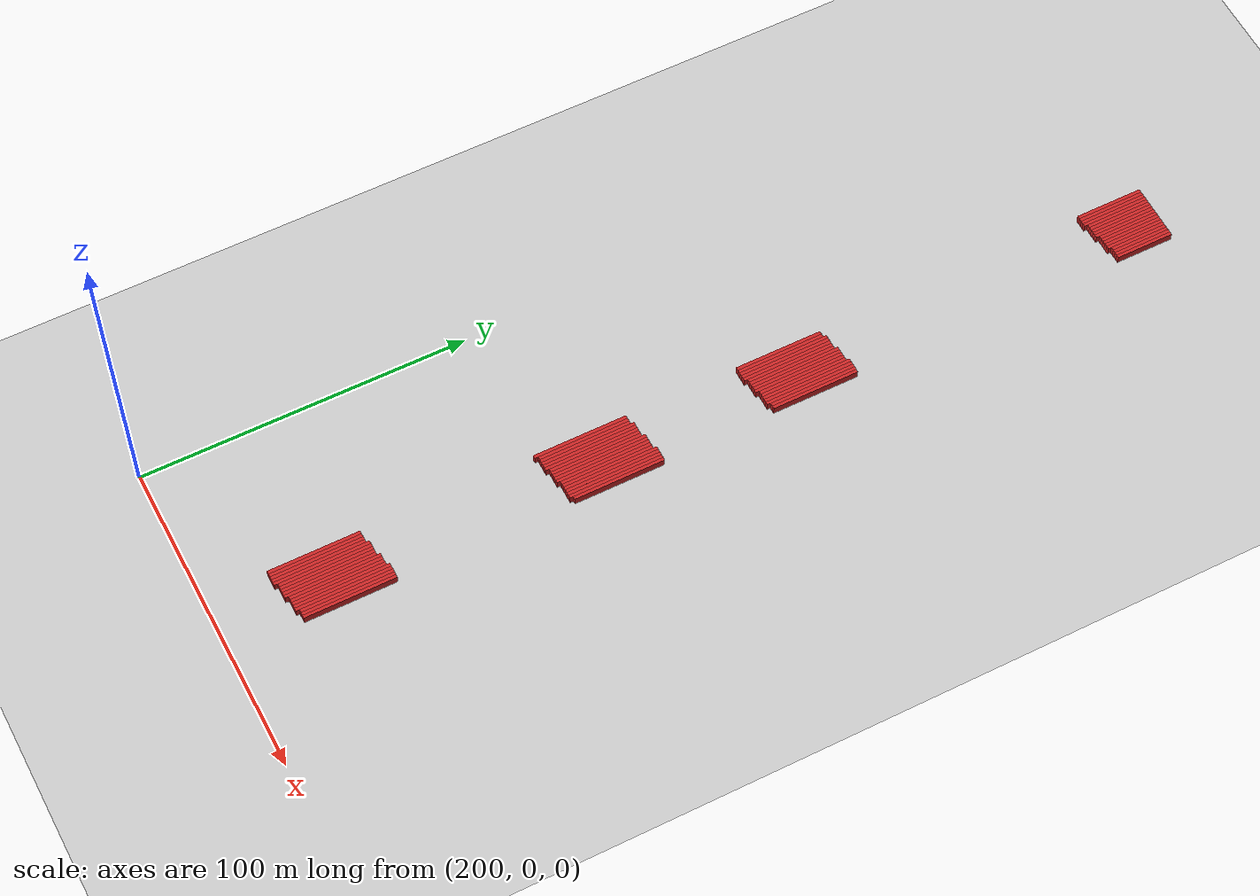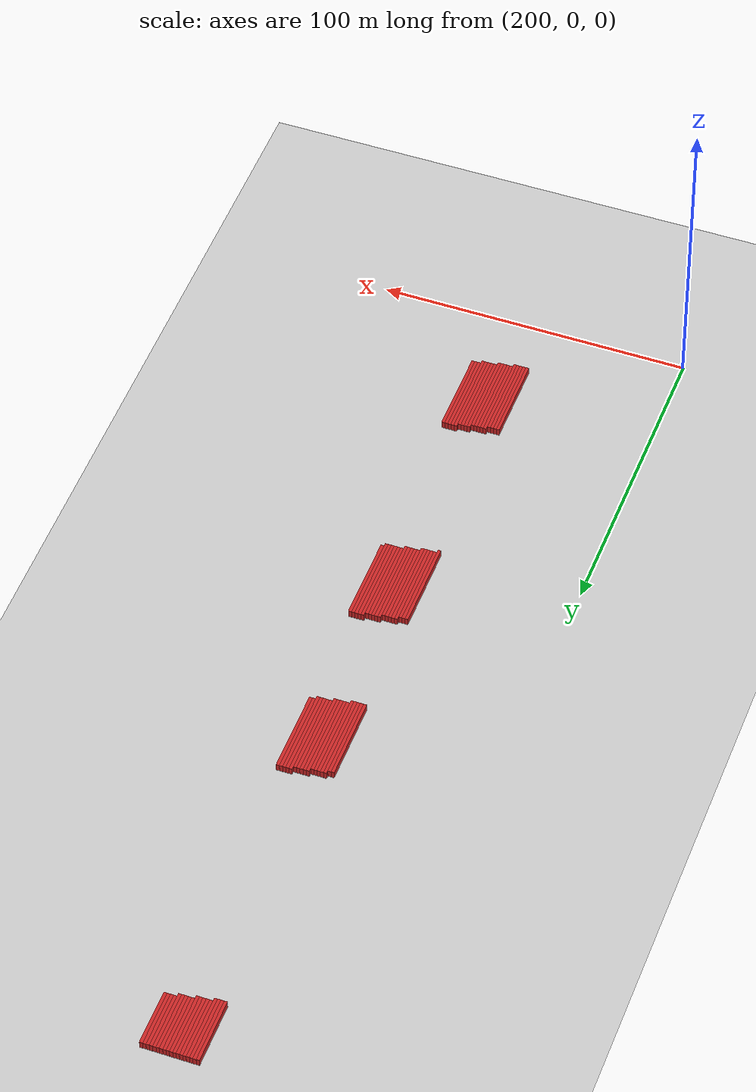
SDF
<sdf version="1.4">
 <world name="1_wall">
  <model name="ground_plane">
   <static>1</static>
   <link name="link">
    <collision name="collision">
     <geometry><plane><normal>0 0 1</normal><size>1000 1000</size></plane></geometry>
     <surface><friction><ode><mu>100</mu><mu2>50</mu2></ode></friction></surface>
    </collision>
    <visual name="visual">
     <cast_shadows>0</cast_shadows>
     <geometry><plane><normal>0 0 1</normal><size>10000 10000</size></plane></geometry>
     <material>
      <script><uri>file://media/materials/scripts/gazebo.material</uri><name>Gazebo/Grey</name></script>
     </material>
    </visual>
    <velocity_decay><linear>0</linear><angular>0</angular></velocity_decay>
   </link>
  </model>
  <model name="Wall_781">
   <static>1</static>
   <link name="Wall_781">
    <collision name="Wall_Collision_781">
     <geometry><box><size>21.0 1.0 2.5</size></box></geometry>
     <pose>0 0 1.25 0 -0 0</pose>
    </collision>
    <visual name="Wall_Visual_781">
     <pose>0 0 1.25 0 -0 0</pose>
     <geometry><box><size>21.0 1.0 2.5</size></box></geometry>
     <material>
      <script><uri>file://media/materials/scripts/gazebo.material</uri><name>Gazebo/Red</name></script>
     </material>
    </visual>
    <velocity_decay><linear>0</linear><angular>0</angular></velocity_decay>
    <pose>244.5 287.5 0 0 0 1.5707963267948966</pose>
   </link>
  </model>
  <model name="Wall_782">
   <static>1</static>
   <link name="Wall_782">
    <collision name="Wall_Collision_782">
     <geometry><box><size>28.0 1.0 2.5</size></box></geometry>
     <pose>0 0 1.25 0 -0 0</pose>
    </collision>
    <visual name="Wall_Visual_782">
     <pose>0 0 1.25 0 -0 0</pose>
     <geometry><box><size>28.0 1.0 2.5</size></box></geometry>
     <material>
      <script><uri>file://media/materials/scripts/gazebo.material</uri><name>Gazebo/Red</name></script>
     </material>
    </visual>
    <velocity_decay><linear>0</linear><angular>0</angular></velocity_decay>
    <pose>245.5 33.0 0 0 0 1.5707963267948966</pose>
   </link>
  </model>
  <model name="Wall_783">
   <static>1</static>
   <link name="Wall_783">
    <collision name="Wall_Collision_783">
     <geometry><box><size>29.0 1.0 2.5</size></box></geometry>
     <pose>0 0 1.25 0 -0 0</pose>
    </collision>
    <visual name="Wall_Visual_783">
     <pose>0 0 1.25 0 -0 0</pose>
     <geometry><box><size>29.0 1.0 2.5</size></box></geometry>
     <material>
      <script><uri>file://media/materials/scripts/gazebo.material</uri><name>Gazebo/Red</name></script>
     </material>
    </visual>
    <velocity_decay><linear>0</linear><angular>0</angular></velocity_decay>
    <pose>245.5 114.5 0 0 0 1.5707963267948966</pose>
   </link>
  </model>
  <model name="Wall_784">
   <static>1</static>
   <link name="Wall_784">
    <collision name="Wall_Collision_784">
     <geometry><box><size>27.0 1.0 2.5</size></box></geometry>
     <pose>0 0 1.25 0 -0 0</pose>
    </collision>
    <visual name="Wall_Visual_784">
     <pose>0 0 1.25 0 -0 0</pose>
     <geometry><box><size>27.0 1.0 2.5</size></box></geometry>
     <material>
      <script><uri>file://media/materials/scripts/gazebo.material</uri><name>Gazebo/Red</name></script>
     </material>
    </visual>
    <velocity_decay><linear>0</linear><angular>0</angular></velocity_decay>
    <pose>245.5 177.5 0 0 0 1.5707963267948966</pose>
   </link>
  </model>
  <model name="Wall_785">
   <static>1</static>
   <link name="Wall_785">
    <collision name="Wall_Collision_785">
     <geometry><box><size>21.0 1.0 2.5</size></box></geometry>
     <pose>0 0 1.25 0 -0 0</pose>
    </collision>
    <visual name="Wall_Visual_785">
     <pose>0 0 1.25 0 -0 0</pose>
     <geometry><box><size>21.0 1.0 2.5</size></box></geometry>
     <material>
      <script><uri>file://media/materials/scripts/gazebo.material</uri><name>Gazebo/Red</name></script>
     </material>
    </visual>
    <velocity_decay><linear>0</linear><angular>0</angular></velocity_decay>
    <pose>245.5 287.5 0 0 0 1.5707963267948966</pose>
   </link>
  </model>
  <model name="Wall_786">
   <static>1</static>
   <link name="Wall_786">
    <collision name="Wall_Collision_786">
     <geometry><box><size>28.0 1.0 2.5</size></box></geometry>
     <pose>0 0 1.25 0 -0 0</pose>
    </collision>
    <visual name="Wall_Visual_786">
     <pose>0 0 1.25 0 -0 0</pose>
     <geometry><box><size>28.0 1.0 2.5</size></box></geometry>
     <material>
      <script><uri>file://media/materials/scripts/gazebo.material</uri><name>Gazebo/Red</name></script>
     </material>
    </visual>
    <velocity_decay><linear>0</linear><angular>0</angular></velocity_decay>
    <pose>246.5 33.0 0 0 0 1.5707963267948966</pose>
   </link>
  </model>
  <model name="Wall_787">
   <static>1</static>
   <link name="Wall_787">
    <collision name="Wall_Collision_787">
     <geometry><box><size>28.0 1.0 2.5</size></box></geometry>
     <pose>0 0 1.25 0 -0 0</pose>
    </collision>
    <visual name="Wall_Visual_787">
     <pose>0 0 1.25 0 -0 0</pose>
     <geometry><box><size>28.0 1.0 2.5</size></box></geometry>
     <material>
      <script><uri>file://media/materials/scripts/gazebo.material</uri><name>Gazebo/Red</name></script>
     </material>
    </visual>
    <velocity_decay><linear>0</linear><angular>0</angular></velocity_decay>
    <pose>246.5 115.0 0 0 0 1.5707963267948966</pose>
   </link>
  </model>
  <model name="Wall_788">
   <static>1</static>
   <link name="Wall_788">
    <collision name="Wall_Collision_788">
     <geometry><box><size>27.0 1.0 2.5</size></box></geometry>
     <pose>0 0 1.25 0 -0 0</pose>
    </collision>
    <visual name="Wall_Visual_788">
     <pose>0 0 1.25 0 -0 0</pose>
     <geometry><box><size>27.0 1.0 2.5</size></box></geometry>
     <material>
      <script><uri>file://media/materials/scripts/gazebo.material</uri><name>Gazebo/Red</name></script>
     </material>
    </visual>
    <velocity_decay><linear>0</linear><angular>0</angular></velocity_decay>
    <pose>246.5 177.5 0 0 0 1.5707963267948966</pose>
   </link>
  </model>
  <model name="Wall_789">
   <static>1</static>
   <link name="Wall_789">
    <collision name="Wall_Collision_789">
     <geometry><box><size>21.0 1.0 2.5</size></box></geometry>
     <pose>0 0 1.25 0 -0 0</pose>
    </collision>
    <visual name="Wall_Visual_789">
     <pose>0 0 1.25 0 -0 0</pose>
     <geometry><box><size>21.0 1.0 2.5</size></box></geometry>
     <material>
      <script><uri>file://media/materials/scripts/gazebo.material</uri><name>Gazebo/Red</name></script>
     </material>
    </visual>
    <velocity_decay><linear>0</linear><angular>0</angular></velocity_decay>
    <pose>246.5 287.5 0 0 0 1.5707963267948966</pose>
   </link>
  </model>
  <model name="Wall_790">
   <static>1</static>
   <link name="Wall_790">
    <collision name="Wall_Collision_790">
     <geometry><box><size>28.0 1.0 2.5</size></box></geometry>
     <pose>0 0 1.25 0 -0 0</pose>
    </collision>
    <visual name="Wall_Visual_790">
     <pose>0 0 1.25 0 -0 0</pose>
     <geometry><box><size>28.0 1.0 2.5</size></box></geometry>
     <material>
      <script><uri>file://media/materials/scripts/gazebo.material</uri><name>Gazebo/Red</name></script>
     </material>
    </visual>
    <velocity_decay><linear>0</linear><angular>0</angular></velocity_decay>
    <pose>247.5 33.0 0 0 0 1.5707963267948966</pose>
   </link>
  </model>
  <model name="Wall_791">
   <static>1</static>
   <link name="Wall_791">
    <collision name="Wall_Collision_791">
     <geometry><box><size>28.0 1.0 2.5</size></box></geometry>
     <pose>0 0 1.25 0 -0 0</pose>
    </collision>
    <visual name="Wall_Visual_791">
     <pose>0 0 1.25 0 -0 0</pose>
     <geometry><box><size>28.0 1.0 2.5</size></box></geometry>
     <material>
      <script><uri>file://media/materials/scripts/gazebo.material</uri><name>Gazebo/Red</name></script>
     </material>
    </visual>
    <velocity_decay><linear>0</linear><angular>0</angular></velocity_decay>
    <pose>247.5 115.0 0 0 0 1.5707963267948966</pose>
   </link>
  </model>
  <model name="Wall_792">
   <static>1</static>
   <link name="Wall_792">
    <collision name="Wall_Collision_792">
     <geometry><box><size>28.0 1.0 2.5</size></box></geometry>
     <pose>0 0 1.25 0 -0 0</pose>
    </collision>
    <visual name="Wall_Visual_792">
     <pose>0 0 1.25 0 -0 0</pose>
     <geometry><box><size>28.0 1.0 2.5</size></box></geometry>
     <material>
      <script><uri>file://media/materials/scripts/gazebo.material</uri><name>Gazebo/Red</name></script>
     </material>
    </visual>
    <velocity_decay><linear>0</linear><angular>0</angular></velocity_decay>
    <pose>247.5 178.0 0 0 0 1.5707963267948966</pose>
   </link>
  </model>
  <model name="Wall_793">
   <static>1</static>
   <link name="Wall_793">
    <collision name="Wall_Collision_793">
     <geometry><box><size>21.0 1.0 2.5</size></box></geometry>
     <pose>0 0 1.25 0 -0 0</pose>
    </collision>
    <visual name="Wall_Visual_793">
     <pose>0 0 1.25 0 -0 0</pose>
     <geometry><box><size>21.0 1.0 2.5</size></box></geometry>
     <material>
      <script><uri>file://media/materials/scripts/gazebo.material</uri><name>Gazebo/Red</name></script>
     </material>
    </visual>
    <velocity_decay><linear>0</linear><angular>0</angular></velocity_decay>
    <pose>247.5 287.5 0 0 0 1.5707963267948966</pose>
   </link>
  </model>
  <model name="Wall_794">
   <static>1</static>
   <link name="Wall_794">
    <collision name="Wall_Collision_794">
     <geometry><box><size>28.0 1.0 2.5</size></box></geometry>
     <pose>0 0 1.25 0 -0 0</pose>
    </collision>
    <visual name="Wall_Visual_794">
     <pose>0 0 1.25 0 -0 0</pose>
     <geometry><box><size>28.0 1.0 2.5</size></box></geometry>
     <material>
      <script><uri>file://media/materials/scripts/gazebo.material</uri><name>Gazebo/Red</name></script>
     </material>
    </visual>
    <velocity_decay><linear>0</linear><angular>0</angular></velocity_decay>
    <pose>248.5 33.0 0 0 0 1.5707963267948966</pose>
   </link>
  </model>
  <model name="Wall_795">
   <static>1</static>
   <link name="Wall_795">
    <collision name="Wall_Collision_795">
     <geometry><box><size>29.0 1.0 2.5</size></box></geometry>
     <pose>0 0 1.25 0 -0 0</pose>
    </collision>
    <visual name="Wall_Visual_795">
     <pose>0 0 1.25 0 -0 0</pose>
     <geometry><box><size>29.0 1.0 2.5</size></box></geometry>
     <material>
      <script><uri>file://media/materials/scripts/gazebo.material</uri><name>Gazebo/Red</name></script>
     </material>
    </visual>
    <velocity_decay><linear>0</linear><angular>0</angular></velocity_decay>
    <pose>248.5 115.5 0 0 0 1.5707963267948966</pose>
   </link>
  </model>
  <model name="Wall_796">
   <static>1</static>
   <link name="Wall_796">
    <collision name="Wall_Collision_796">
     <geometry><box><size>28.0 1.0 2.5</size></box></geometry>
     <pose>0 0 1.25 0 -0 0</pose>
    </collision>
    <visual name="Wall_Visual_796">
     <pose>0 0 1.25 0 -0 0</pose>
     <geometry><box><size>28.0 1.0 2.5</size></box></geometry>
     <material>
      <script><uri>file://media/materials/scripts/gazebo.material</uri><name>Gazebo/Red</name></script>
     </material>
    </visual>
    <velocity_decay><linear>0</linear><angular>0</angular></velocity_decay>
    <pose>248.5 178.0 0 0 0 1.5707963267948966</pose>
   </link>
  </model>
  <model name="Wall_797">
   <static>1</static>
   <link name="Wall_797">
    <collision name="Wall_Collision_797">
     <geometry><box><size>20.0 1.0 2.5</size></box></geometry>
     <pose>0 0 1.25 0 -0 0</pose>
    </collision>
    <visual name="Wall_Visual_797">
     <pose>0 0 1.25 0 -0 0</pose>
     <geometry><box><size>20.0 1.0 2.5</size></box></geometry>
     <material>
      <script><uri>file://media/materials/scripts/gazebo.material</uri><name>Gazebo/Red</name></script>
     </material>
    </visual>
    <velocity_decay><linear>0</linear><angular>0</angular></velocity_decay>
    <pose>248.5 288.0 0 0 0 1.5707963267948966</pose>
   </link>
  </model>
  <model name="Wall_798">
   <static>1</static>
   <link name="Wall_798">
    <collision name="Wall_Collision_798">
     <geometry><box><size>29.0 1.0 2.5</size></box></geometry>
     <pose>0 0 1.25 0 -0 0</pose>
    </collision>
    <visual name="Wall_Visual_798">
     <pose>0 0 1.25 0 -0 0</pose>
     <geometry><box><size>29.0 1.0 2.5</size></box></geometry>
     <material>
      <script><uri>file://media/materials/scripts/gazebo.material</uri><name>Gazebo/Red</name></script>
     </material>
    </visual>
    <velocity_decay><linear>0</linear><angular>0</angular></velocity_decay>
    <pose>249.5 33.5 0 0 0 1.5707963267948966</pose>
   </link>
  </model>
  <model name="Wall_799">
   <static>1</static>
   <link name="Wall_799">
    <collision name="Wall_Collision_799">
     <geometry><box><size>29.0 1.0 2.5</size></box></geometry>
     <pose>0 0 1.25 0 -0 0</pose>
    </collision>
    <visual name="Wall_Visual_799">
     <pose>0 0 1.25 0 -0 0</pose>
     <geometry><box><size>29.0 1.0 2.5</size></box></geometry>
     <material>
      <script><uri>file://media/materials/scripts/gazebo.material</uri><name>Gazebo/Red</name></script>
     </material>
    </visual>
    <velocity_decay><linear>0</linear><angular>0</angular></velocity_decay>
    <pose>249.5 115.5 0 0 0 1.5707963267948966</pose>
   </link>
  </model>
  <model name="Wall_800">
   <static>1</static>
   <link name="Wall_800">
    <collision name="Wall_Collision_800">
     <geometry><box><size>28.0 1.0 2.5</size></box></geometry>
     <pose>0 0 1.25 0 -0 0</pose>
    </collision>
    <visual name="Wall_Visual_800">
     <pose>0 0 1.25 0 -0 0</pose>
     <geometry><box><size>28.0 1.0 2.5</size></box></geometry>
     <material>
      <script><uri>file://media/materials/scripts/gazebo.material</uri><name>Gazebo/Red</name></script>
     </material>
    </visual>
    <velocity_decay><linear>0</linear><angular>0</angular></velocity_decay>
    <pose>249.5 178.0 0 0 0 1.5707963267948966</pose>
   </link>
  </model>
  <model name="Wall_801">
   <static>1</static>
   <link name="Wall_801">
    <collision name="Wall_Collision_801">
     <geometry><box><size>20.0 1.0 2.5</size></box></geometry>
     <pose>0 0 1.25 0 -0 0</pose>
    </collision>
    <visual name="Wall_Visual_801">
     <pose>0 0 1.25 0 -0 0</pose>
     <geometry><box><size>20.0 1.0 2.5</size></box></geometry>
     <material>
      <script><uri>file://media/materials/scripts/gazebo.material</uri><name>Gazebo/Red</name></script>
     </material>
    </visual>
    <velocity_decay><linear>0</linear><angular>0</angular></velocity_decay>
    <pose>249.5 288.0 0 0 0 1.5707963267948966</pose>
   </link>
  </model>
  <model name="Wall_802">
   <static>1</static>
   <link name="Wall_802">
    <collision name="Wall_Collision_802">
     <geometry><box><size>28.0 1.0 2.5</size></box></geometry>
     <pose>0 0 1.25 0 -0 0</pose>
    </collision>
    <visual name="Wall_Visual_802">
     <pose>0 0 1.25 0 -0 0</pose>
     <geometry><box><size>28.0 1.0 2.5</size></box></geometry>
     <material>
      <script><uri>file://media/materials/scripts/gazebo.material</uri><name>Gazebo/Red</name></script>
     </material>
    </visual>
    <velocity_decay><linear>0</linear><angular>0</angular></velocity_decay>
    <pose>250.5 34.0 0 0 0 1.5707963267948966</pose>
   </link>
  </model>
  <model name="Wall_803">
   <static>1</static>
   <link name="Wall_803">
    <collision name="Wall_Collision_803">
     <geometry><box><size>29.0 1.0 2.5</size></box></geometry>
     <pose>0 0 1.25 0 -0 0</pose>
    </collision>
    <visual name="Wall_Visual_803">
     <pose>0 0 1.25 0 -0 0</pose>
     <geometry><box><size>29.0 1.0 2.5</size></box></geometry>
     <material>
      <script><uri>file://media/materials/scripts/gazebo.material</uri><name>Gazebo/Red</name></script>
     </material>
    </visual>
    <velocity_decay><linear>0</linear><angular>0</angular></velocity_decay>
    <pose>250.5 115.5 0 0 0 1.5707963267948966</pose>
   </link>
  </model>
  <model name="Wall_804">
   <static>1</static>
   <link name="Wall_804">
    <collision name="Wall_Collision_804">
     <geometry><box><size>27.0 1.0 2.5</size></box></geometry>
     <pose>0 0 1.25 0 -0 0</pose>
    </collision>
    <visual name="Wall_Visual_804">
     <pose>0 0 1.25 0 -0 0</pose>
     <geometry><box><size>27.0 1.0 2.5</size></box></geometry>
     <material>
      <script><uri>file://media/materials/scripts/gazebo.material</uri><name>Gazebo/Red</name></script>
     </material>
    </visual>
    <velocity_decay><linear>0</linear><angular>0</angular></velocity_decay>
    <pose>250.5 178.5 0 0 0 1.5707963267948966</pose>
   </link>
  </model>
  <model name="Wall_805">
   <static>1</static>
   <link name="Wall_805">
    <collision name="Wall_Collision_805">
     <geometry><box><size>20.0 1.0 2.5</size></box></geometry>
     <pose>0 0 1.25 0 -0 0</pose>
    </collision>
    <visual name="Wall_Visual_805">
     <pose>0 0 1.25 0 -0 0</pose>
     <geometry><box><size>20.0 1.0 2.5</size></box></geometry>
     <material>
      <script><uri>file://media/materials/scripts/gazebo.material</uri><name>Gazebo/Red</name></script>
     </material>
    </visual>
    <velocity_decay><linear>0</linear><angular>0</angular></velocity_decay>
    <pose>250.5 288.0 0 0 0 1.5707963267948966</pose>
   </link>
  </model>
  <model name="Wall_806">
   <static>1</static>
   <link name="Wall_806">
    <collision name="Wall_Collision_806">
     <geometry><box><size>28.0 1.0 2.5</size></box></geometry>
     <pose>0 0 1.25 0 -0 0</pose>
    </collision>
    <visual name="Wall_Visual_806">
     <pose>0 0 1.25 0 -0 0</pose>
     <geometry><box><size>28.0 1.0 2.5</size></box></geometry>
     <material>
      <script><uri>file://media/materials/scripts/gazebo.material</uri><name>Gazebo/Red</name></script>
     </material>
    </visual>
    <velocity_decay><linear>0</linear><angular>0</angular></velocity_decay>
    <pose>251.5 34.0 0 0 0 1.5707963267948966</pose>
   </link>
  </model>
  <model name="Wall_807">
   <static>1</static>
   <link name="Wall_807">
    <collision name="Wall_Collision_807">
     <geometry><box><size>28.0 1.0 2.5</size></box></geometry>
     <pose>0 0 1.25 0 -0 0</pose>
    </collision>
    <visual name="Wall_Visual_807">
     <pose>0 0 1.25 0 -0 0</pose>
     <geometry><box><size>28.0 1.0 2.5</size></box></geometry>
     <material>
      <script><uri>file://media/materials/scripts/gazebo.material</uri><name>Gazebo/Red</name></script>
     </material>
    </visual>
    <velocity_decay><linear>0</linear><angular>0</angular></velocity_decay>
    <pose>251.5 116.0 0 0 0 1.5707963267948966</pose>
   </link>
  </model>
  <model name="Wall_808">
   <static>1</static>
   <link name="Wall_808">
    <collision name="Wall_Collision_808">
     <geometry><box><size>27.0 1.0 2.5</size></box></geometry>
     <pose>0 0 1.25 0 -0 0</pose>
    </collision>
    <visual name="Wall_Visual_808">
     <pose>0 0 1.25 0 -0 0</pose>
     <geometry><box><size>27.0 1.0 2.5</size></box></geometry>
     <material>
      <script><uri>file://media/materials/scripts/gazebo.material</uri><name>Gazebo/Red</name></script>
     </material>
    </visual>
    <velocity_decay><linear>0</linear><angular>0</angular></velocity_decay>
    <pose>251.5 178.5 0 0 0 1.5707963267948966</pose>
   </link>
  </model>
  <model name="Wall_809">
   <static>1</static>
   <link name="Wall_809">
    <collision name="Wall_Collision_809">
     <geometry><box><size>20.0 1.0 2.5</size></box></geometry>
     <pose>0 0 1.25 0 -0 0</pose>
    </collision>
    <visual name="Wall_Visual_809">
     <pose>0 0 1.25 0 -0 0</pose>
     <geometry><box><size>20.0 1.0 2.5</size></box></geometry>
     <material>
      <script><uri>file://media/materials/scripts/gazebo.material</uri><name>Gazebo/Red</name></script>
     </material>
    </visual>
    <velocity_decay><linear>0</linear><angular>0</angular></velocity_decay>
    <pose>251.5 288.0 0 0 0 1.5707963267948966</pose>
   </link>
  </model>
  <model name="Wall_810">
   <static>1</static>
   <link name="Wall_810">
    <collision name="Wall_Collision_810">
     <geometry><box><size>28.0 1.0 2.5</size></box></geometry>
     <pose>0 0 1.25 0 -0 0</pose>
    </collision>
    <visual name="Wall_Visual_810">
     <pose>0 0 1.25 0 -0 0</pose>
     <geometry><box><size>28.0 1.0 2.5</size></box></geometry>
     <material>
      <script><uri>file://media/materials/scripts/gazebo.material</uri><name>Gazebo/Red</name></script>
     </material>
    </visual>
    <velocity_decay><linear>0</linear><angular>0</angular></velocity_decay>
    <pose>252.5 34.0 0 0 0 1.5707963267948966</pose>
   </link>
  </model>
  <model name="Wall_811">
   <static>1</static>
   <link name="Wall_811">
    <collision name="Wall_Collision_811">
     <geometry><box><size>28.0 1.0 2.5</size></box></geometry>
     <pose>0 0 1.25 0 -0 0</pose>
    </collision>
    <visual name="Wall_Visual_811">
     <pose>0 0 1.25 0 -0 0</pose>
     <geometry><box><size>28.0 1.0 2.5</size></box></geometry>
     <material>
      <script><uri>file://media/materials/scripts/gazebo.material</uri><name>Gazebo/Red</name></script>
     </material>
    </visual>
    <velocity_decay><linear>0</linear><angular>0</angular></velocity_decay>
    <pose>252.5 116.0 0 0 0 1.5707963267948966</pose>
   </link>
  </model>
  <model name="Wall_812">
   <static>1</static>
   <link name="Wall_812">
    <collision name="Wall_Collision_812">
     <geometry><box><size>28.0 1.0 2.5</size></box></geometry>
     <pose>0 0 1.25 0 -0 0</pose>
    </collision>
    <visual name="Wall_Visual_812">
     <pose>0 0 1.25 0 -0 0</pose>
     <geometry><box><size>28.0 1.0 2.5</size></box></geometry>
     <material>
      <script><uri>file://media/materials/scripts/gazebo.material</uri><name>Gazebo/Red</name></script>
     </material>
    </visual>
    <velocity_decay><linear>0</linear><angular>0</angular></velocity_decay>
    <pose>252.5 179.0 0 0 0 1.5707963267948966</pose>
   </link>
  </model>
  <model name="Wall_813">
   <static>1</static>
   <link name="Wall_813">
    <collision name="Wall_Collision_813">
     <geometry><box><size>20.0 1.0 2.5</size></box></geometry>
     <pose>0 0 1.25 0 -0 0</pose>
    </collision>
    <visual name="Wall_Visual_813">
     <pose>0 0 1.25 0 -0 0</pose>
     <geometry><box><size>20.0 1.0 2.5</size></box></geometry>
     <material>
      <script><uri>file://media/materials/scripts/gazebo.material</uri><name>Gazebo/Red</name></script>
     </material>
    </visual>
    <velocity_decay><linear>0</linear><angular>0</angular></velocity_decay>
    <pose>252.5 288.0 0 0 0 1.5707963267948966</pose>
   </link>
  </model>
  <model name="Wall_814">
   <static>1</static>
   <link name="Wall_814">
    <collision name="Wall_Collision_814">
     <geometry><box><size>28.0 1.0 2.5</size></box></geometry>
     <pose>0 0 1.25 0 -0 0</pose>
    </collision>
    <visual name="Wall_Visual_814">
     <pose>0 0 1.25 0 -0 0</pose>
     <geometry><box><size>28.0 1.0 2.5</size></box></geometry>
     <material>
      <script><uri>file://media/materials/scripts/gazebo.material</uri><name>Gazebo/Red</name></script>
     </material>
    </visual>
    <velocity_decay><linear>0</linear><angular>0</angular></velocity_decay>
    <pose>253.5 34.0 0 0 0 1.5707963267948966</pose>
   </link>
  </model>
  <model name="Wall_815">
   <static>1</static>
   <link name="Wall_815">
    <collision name="Wall_Collision_815">
     <geometry><box><size>29.0 1.0 2.5</size></box></geometry>
     <pose>0 0 1.25 0 -0 0</pose>
    </collision>
    <visual name="Wall_Visual_815">
     <pose>0 0 1.25 0 -0 0</pose>
     <geometry><box><size>29.0 1.0 2.5</size></box></geometry>
     <material>
      <script><uri>file://media/materials/scripts/gazebo.material</uri><name>Gazebo/Red</name></script>
     </material>
    </visual>
    <velocity_decay><linear>0</linear><angular>0</angular></velocity_decay>
    <pose>253.5 116.5 0 0 0 1.5707963267948966</pose>
   </link>
  </model>
  <model name="Wall_816">
   <static>1</static>
   <link name="Wall_816">
    <collision name="Wall_Collision_816">
     <geometry><box><size>28.0 1.0 2.5</size></box></geometry>
     <pose>0 0 1.25 0 -0 0</pose>
    </collision>
    <visual name="Wall_Visual_816">
     <pose>0 0 1.25 0 -0 0</pose>
     <geometry><box><size>28.0 1.0 2.5</size></box></geometry>
     <material>
      <script><uri>file://media/materials/scripts/gazebo.material</uri><name>Gazebo/Red</name></script>
     </material>
    </visual>
    <velocity_decay><linear>0</linear><angular>0</angular></velocity_decay>
    <pose>253.5 179.0 0 0 0 1.5707963267948966</pose>
   </link>
  </model>
  <model name="Wall_817">
   <static>1</static>
   <link name="Wall_817">
    <collision name="Wall_Collision_817">
     <geometry><box><size>19.0 1.0 2.5</size></box></geometry>
     <pose>0 0 1.25 0 -0 0</pose>
    </collision>
    <visual name="Wall_Visual_817">
     <pose>0 0 1.25 0 -0 0</pose>
     <geometry><box><size>19.0 1.0 2.5</size></box></geometry>
     <material>
      <script><uri>file://media/materials/scripts/gazebo.material</uri><name>Gazebo/Red</name></script>
     </material>
    </visual>
    <velocity_decay><linear>0</linear><angular>0</angular></velocity_decay>
    <pose>253.5 288.5 0 0 0 1.5707963267948966</pose>
   </link>
  </model>
  <model name="Wall_818">
   <static>1</static>
   <link name="Wall_818">
    <collision name="Wall_Collision_818">
     <geometry><box><size>29.0 1.0 2.5</size></box></geometry>
     <pose>0 0 1.25 0 -0 0</pose>
    </collision>
    <visual name="Wall_Visual_818">
     <pose>0 0 1.25 0 -0 0</pose>
     <geometry><box><size>29.0 1.0 2.5</size></box></geometry>
     <material>
      <script><uri>file://media/materials/scripts/gazebo.material</uri><name>Gazebo/Red</name></script>
     </material>
    </visual>
    <velocity_decay><linear>0</linear><angular>0</angular></velocity_decay>
    <pose>254.5 34.5 0 0 0 1.5707963267948966</pose>
   </link>
  </model>
  <model name="Wall_819">
   <static>1</static>
   <link name="Wall_819">
    <collision name="Wall_Collision_819">
     <geometry><box><size>29.0 1.0 2.5</size></box></geometry>
     <pose>0 0 1.25 0 -0 0</pose>
    </collision>
    <visual name="Wall_Visual_819">
     <pose>0 0 1.25 0 -0 0</pose>
     <geometry><box><size>29.0 1.0 2.5</size></box></geometry>
     <material>
      <script><uri>file://media/materials/scripts/gazebo.material</uri><name>Gazebo/Red</name></script>
     </material>
    </visual>
    <velocity_decay><linear>0</linear><angular>0</angular></velocity_decay>
    <pose>254.5 116.5 0 0 0 1.5707963267948966</pose>
   </link>
  </model>
  <model name="Wall_820">
   <static>1</static>
   <link name="Wall_820">
    <collision name="Wall_Collision_820">
     <geometry><box><size>28.0 1.0 2.5</size></box></geometry>
     <pose>0 0 1.25 0 -0 0</pose>
    </collision>
    <visual name="Wall_Visual_820">
     <pose>0 0 1.25 0 -0 0</pose>
     <geometry><box><size>28.0 1.0 2.5</size></box></geometry>
     <material>
      <script><uri>file://media/materials/scripts/gazebo.material</uri><name>Gazebo/Red</name></script>
     </material>
    </visual>
    <velocity_decay><linear>0</linear><angular>0</angular></velocity_decay>
    <pose>254.5 179.0 0 0 0 1.5707963267948966</pose>
   </link>
  </model>
  <model name="Wall_821">
   <static>1</static>
   <link name="Wall_821">
    <collision name="Wall_Collision_821">
     <geometry><box><size>19.0 1.0 2.5</size></box></geometry>
     <pose>0 0 1.25 0 -0 0</pose>
    </collision>
    <visual name="Wall_Visual_821">
     <pose>0 0 1.25 0 -0 0</pose>
     <geometry><box><size>19.0 1.0 2.5</size></box></geometry>
     <material>
      <script><uri>file://media/materials/scripts/gazebo.material</uri><name>Gazebo/Red</name></script>
     </material>
    </visual>
    <velocity_decay><linear>0</linear><angular>0</angular></velocity_decay>
    <pose>254.5 288.5 0 0 0 1.5707963267948966</pose>
   </link>
  </model>
  <model name="Wall_822">
   <static>1</static>
   <link name="Wall_822">
    <collision name="Wall_Collision_822">
     <geometry><box><size>28.0 1.0 2.5</size></box></geometry>
     <pose>0 0 1.25 0 -0 0</pose>
    </collision>
    <visual name="Wall_Visual_822">
     <pose>0 0 1.25 0 -0 0</pose>
     <geometry><box><size>28.0 1.0 2.5</size></box></geometry>
     <material>
      <script><uri>file://media/materials/scripts/gazebo.material</uri><name>Gazebo/Red</name></script>
     </material>
    </visual>
    <velocity_decay><linear>0</linear><angular>0</angular></velocity_decay>
    <pose>255.5 35.0 0 0 0 1.5707963267948966</pose>
   </link>
  </model>
  <model name="Wall_823">
   <static>1</static>
   <link name="Wall_823">
    <collision name="Wall_Collision_823">
     <geometry><box><size>29.0 1.0 2.5</size></box></geometry>
     <pose>0 0 1.25 0 -0 0</pose>
    </collision>
    <visual name="Wall_Visual_823">
     <pose>0 0 1.25 0 -0 0</pose>
     <geometry><box><size>29.0 1.0 2.5</size></box></geometry>
     <material>
      <script><uri>file://media/materials/scripts/gazebo.material</uri><name>Gazebo/Red</name></script>
     </material>
    </visual>
    <velocity_decay><linear>0</linear><angular>0</angular></velocity_decay>
    <pose>255.5 116.5 0 0 0 1.5707963267948966</pose>
   </link>
  </model>
  <model name="Wall_824">
   <static>1</static>
   <link name="Wall_824">
    <collision name="Wall_Collision_824">
     <geometry><box><size>27.0 1.0 2.5</size></box></geometry>
     <pose>0 0 1.25 0 -0 0</pose>
    </collision>
    <visual name="Wall_Visual_824">
     <pose>0 0 1.25 0 -0 0</pose>
     <geometry><box><size>27.0 1.0 2.5</size></box></geometry>
     <material>
      <script><uri>file://media/materials/scripts/gazebo.material</uri><name>Gazebo/Red</name></script>
     </material>
    </visual>
    <velocity_decay><linear>0</linear><angular>0</angular></velocity_decay>
    <pose>255.5 179.5 0 0 0 1.5707963267948966</pose>
   </link>
  </model>
  <model name="Wall_825">
   <static>1</static>
   <link name="Wall_825">
    <collision name="Wall_Collision_825">
     <geometry><box><size>19.0 1.0 2.5</size></box></geometry>
     <pose>0 0 1.25 0 -0 0</pose>
    </collision>
    <visual name="Wall_Visual_825">
     <pose>0 0 1.25 0 -0 0</pose>
     <geometry><box><size>19.0 1.0 2.5</size></box></geometry>
     <material>
      <script><uri>file://media/materials/scripts/gazebo.material</uri><name>Gazebo/Red</name></script>
     </material>
    </visual>
    <velocity_decay><linear>0</linear><angular>0</angular></velocity_decay>
    <pose>255.5 288.5 0 0 0 1.5707963267948966</pose>
   </link>
  </model>
  <model name="Wall_826">
   <static>1</static>
   <link name="Wall_826">
    <collision name="Wall_Collision_826">
     <geometry><box><size>28.0 1.0 2.5</size></box></geometry>
     <pose>0 0 1.25 0 -0 0</pose>
    </collision>
    <visual name="Wall_Visual_826">
     <pose>0 0 1.25 0 -0 0</pose>
     <geometry><box><size>28.0 1.0 2.5</size></box></geometry>
     <material>
      <script><uri>file://media/materials/scripts/gazebo.material</uri><name>Gazebo/Red</name></script>
     </material>
    </visual>
    <velocity_decay><linear>0</linear><angular>0</angular></velocity_decay>
    <pose>256.5 35.0 0 0 0 1.5707963267948966</pose>
   </link>
  </model>
  <model name="Wall_827">
   <static>1</static>
   <link name="Wall_827">
    <collision name="Wall_Collision_827">
     <geometry><box><size>28.0 1.0 2.5</size></box></geometry>
     <pose>0 0 1.25 0 -0 0</pose>
    </collision>
    <visual name="Wall_Visual_827">
     <pose>0 0 1.25 0 -0 0</pose>
     <geometry><box><size>28.0 1.0 2.5</size></box></geometry>
     <material>
      <script><uri>file://media/materials/scripts/gazebo.material</uri><name>Gazebo/Red</name></script>
     </material>
    </visual>
    <velocity_decay><linear>0</linear><angular>0</angular></velocity_decay>
    <pose>256.5 117.0 0 0 0 1.5707963267948966</pose>
   </link>
  </model>
  <model name="Wall_828">
   <static>1</static>
   <link name="Wall_828">
    <collision name="Wall_Collision_828">
     <geometry><box><size>27.0 1.0 2.5</size></box></geometry>
     <pose>0 0 1.25 0 -0 0</pose>
    </collision>
    <visual name="Wall_Visual_828">
     <pose>0 0 1.25 0 -0 0</pose>
     <geometry><box><size>27.0 1.0 2.5</size></box></geometry>
     <material>
      <script><uri>file://media/materials/scripts/gazebo.material</uri><name>Gazebo/Red</name></script>
     </material>
    </visual>
    <velocity_decay><linear>0</linear><angular>0</angular></velocity_decay>
    <pose>256.5 179.5 0 0 0 1.5707963267948966</pose>
   </link>
  </model>
  <model name="Wall_829">
   <static>1</static>
   <link name="Wall_829">
    <collision name="Wall_Collision_829">
     <geometry><box><size>19.0 1.0 2.5</size></box></geometry>
     <pose>0 0 1.25 0 -0 0</pose>
    </collision>
    <visual name="Wall_Visual_829">
     <pose>0 0 1.25 0 -0 0</pose>
     <geometry><box><size>19.0 1.0 2.5</size></box></geometry>
     <material>
      <script><uri>file://media/materials/scripts/gazebo.material</uri><name>Gazebo/Red</name></script>
     </material>
    </visual>
    <velocity_decay><linear>0</linear><angular>0</angular></velocity_decay>
    <pose>256.5 288.5 0 0 0 1.5707963267948966</pose>
   </link>
  </model>
  <model name="Wall_830">
   <static>1</static>
   <link name="Wall_830">
    <collision name="Wall_Collision_830">
     <geometry><box><size>28.0 1.0 2.5</size></box></geometry>
     <pose>0 0 1.25 0 -0 0</pose>
    </collision>
    <visual name="Wall_Visual_830">
     <pose>0 0 1.25 0 -0 0</pose>
     <geometry><box><size>28.0 1.0 2.5</size></box></geometry>
     <material>
      <script><uri>file://media/materials/scripts/gazebo.material</uri><name>Gazebo/Red</name></script>
     </material>
    </visual>
    <velocity_decay><linear>0</linear><angular>0</angular></velocity_decay>
    <pose>257.5 35.0 0 0 0 1.5707963267948966</pose>
   </link>
  </model>
  <model name="Wall_831">
   <static>1</static>
   <link name="Wall_831">
    <collision name="Wall_Collision_831">
     <geometry><box><size>28.0 1.0 2.5</size></box></geometry>
     <pose>0 0 1.25 0 -0 0</pose>
    </collision>
    <visual name="Wall_Visual_831">
     <pose>0 0 1.25 0 -0 0</pose>
     <geometry><box><size>28.0 1.0 2.5</size></box></geometry>
     <material>
      <script><uri>file://media/materials/scripts/gazebo.material</uri><name>Gazebo/Red</name></script>
     </material>
    </visual>
    <velocity_decay><linear>0</linear><angular>0</angular></velocity_decay>
    <pose>257.5 117.0 0 0 0 1.5707963267948966</pose>
   </link>
  </model>
  <model name="Wall_832">
   <static>1</static>
   <link name="Wall_832">
    <collision name="Wall_Collision_832">
     <geometry><box><size>28.0 1.0 2.5</size></box></geometry>
     <pose>0 0 1.25 0 -0 0</pose>
    </collision>
    <visual name="Wall_Visual_832">
     <pose>0 0 1.25 0 -0 0</pose>
     <geometry><box><size>28.0 1.0 2.5</size></box></geometry>
     <material>
      <script><uri>file://media/materials/scripts/gazebo.material</uri><name>Gazebo/Red</name></script>
     </material>
    </visual>
    <velocity_decay><linear>0</linear><angular>0</angular></velocity_decay>
    <pose>257.5 180.0 0 0 0 1.5707963267948966</pose>
   </link>
  </model>
  <model name="Wall_833">
   <static>1</static>
   <link name="Wall_833">
    <collision name="Wall_Collision_833">
     <geometry><box><size>19.0 1.0 2.5</size></box></geometry>
     <pose>0 0 1.25 0 -0 0</pose>
    </collision>
    <visual name="Wall_Visual_833">
     <pose>0 0 1.25 0 -0 0</pose>
     <geometry><box><size>19.0 1.0 2.5</size></box></geometry>
     <material>
      <script><uri>file://media/materials/scripts/gazebo.material</uri><name>Gazebo/Red</name></script>
     </material>
    </visual>
    <velocity_decay><linear>0</linear><angular>0</angular></velocity_decay>
    <pose>257.5 288.5 0 0 0 1.5707963267948966</pose>
   </link>
  </model>
  <model name="Wall_834">
   <static>1</static>
   <link name="Wall_834">
    <collision name="Wall_Collision_834">
     <geometry><box><size>29.0 1.0 2.5</size></box></geometry>
     <pose>0 0 1.25 0 -0 0</pose>
    </collision>
    <visual name="Wall_Visual_834">
     <pose>0 0 1.25 0 -0 0</pose>
     <geometry><box><size>29.0 1.0 2.5</size></box></geometry>
     <material>
      <script><uri>file://media/materials/scripts/gazebo.material</uri><name>Gazebo/Red</name></script>
     </material>
    </visual>
    <velocity_decay><linear>0</linear><angular>0</angular></velocity_decay>
    <pose>258.5 35.5 0 0 0 1.5707963267948966</pose>
   </link>
  </model>
  <model name="Wall_835">
   <static>1</static>
   <link name="Wall_835">
    <collision name="Wall_Collision_835">
     <geometry><box><size>29.0 1.0 2.5</size></box></geometry>
     <pose>0 0 1.25 0 -0 0</pose>
    </collision>
    <visual name="Wall_Visual_835">
     <pose>0 0 1.25 0 -0 0</pose>
     <geometry><box><size>29.0 1.0 2.5</size></box></geometry>
     <material>
      <script><uri>file://media/materials/scripts/gazebo.material</uri><name>Gazebo/Red</name></script>
     </material>
    </visual>
    <velocity_decay><linear>0</linear><angular>0</angular></velocity_decay>
    <pose>258.5 117.5 0 0 0 1.5707963267948966</pose>
   </link>
  </model>
  <model name="Wall_836">
   <static>1</static>
   <link name="Wall_836">
    <collision name="Wall_Collision_836">
     <geometry><box><size>28.0 1.0 2.5</size></box></geometry>
     <pose>0 0 1.25 0 -0 0</pose>
    </collision>
    <visual name="Wall_Visual_836">
     <pose>0 0 1.25 0 -0 0</pose>
     <geometry><box><size>28.0 1.0 2.5</size></box></geometry>
     <material>
      <script><uri>file://media/materials/scripts/gazebo.material</uri><name>Gazebo/Red</name></script>
     </material>
    </visual>
    <velocity_decay><linear>0</linear><angular>0</angular></velocity_decay>
    <pose>258.5 180.0 0 0 0 1.5707963267948966</pose>
   </link>
  </model>
  <model name="Wall_837">
   <static>1</static>
   <link name="Wall_837">
    <collision name="Wall_Collision_837">
     <geometry><box><size>18.0 1.0 2.5</size></box></geometry>
     <pose>0 0 1.25 0 -0 0</pose>
    </collision>
    <visual name="Wall_Visual_837">
     <pose>0 0 1.25 0 -0 0</pose>
     <geometry><box><size>18.0 1.0 2.5</size></box></geometry>
     <material>
      <script><uri>file://media/materials/scripts/gazebo.material</uri><name>Gazebo/Red</name></script>
     </material>
    </visual>
    <velocity_decay><linear>0</linear><angular>0</angular></velocity_decay>
    <pose>258.5 289.0 0 0 0 1.5707963267948966</pose>
   </link>
  </model>
  <model name="Wall_838">
   <static>1</static>
   <link name="Wall_838">
    <collision name="Wall_Collision_838">
     <geometry><box><size>29.0 1.0 2.5</size></box></geometry>
     <pose>0 0 1.25 0 -0 0</pose>
    </collision>
    <visual name="Wall_Visual_838">
     <pose>0 0 1.25 0 -0 0</pose>
     <geometry><box><size>29.0 1.0 2.5</size></box></geometry>
     <material>
      <script><uri>file://media/materials/scripts/gazebo.material</uri><name>Gazebo/Red</name></script>
     </material>
    </visual>
    <velocity_decay><linear>0</linear><angular>0</angular></velocity_decay>
    <pose>259.5 35.5 0 0 0 1.5707963267948966</pose>
   </link>
  </model>
  <model name="Wall_839">
   <static>1</static>
   <link name="Wall_839">
    <collision name="Wall_Collision_839">
     <geometry><box><size>29.0 1.0 2.5</size></box></geometry>
     <pose>0 0 1.25 0 -0 0</pose>
    </collision>
    <visual name="Wall_Visual_839">
     <pose>0 0 1.25 0 -0 0</pose>
     <geometry><box><size>29.0 1.0 2.5</size></box></geometry>
     <material>
      <script><uri>file://media/materials/scripts/gazebo.material</uri><name>Gazebo/Red</name></script>
     </material>
    </visual>
    <velocity_decay><linear>0</linear><angular>0</angular></velocity_decay>
    <pose>259.5 117.5 0 0 0 1.5707963267948966</pose>
   </link>
  </model>
  <model name="Wall_840">
   <static>1</static>
   <link name="Wall_840">
    <collision name="Wall_Collision_840">
     <geometry><box><size>28.0 1.0 2.5</size></box></geometry>
     <pose>0 0 1.25 0 -0 0</pose>
    </collision>
    <visual name="Wall_Visual_840">
     <pose>0 0 1.25 0 -0 0</pose>
     <geometry><box><size>28.0 1.0 2.5</size></box></geometry>
     <material>
      <script><uri>file://media/materials/scripts/gazebo.material</uri><name>Gazebo/Red</name></script>
     </material>
    </visual>
    <velocity_decay><linear>0</linear><angular>0</angular></velocity_decay>
    <pose>259.5 180.0 0 0 0 1.5707963267948966</pose>
   </link>
  </model>
  <model name="Wall_841">
   <static>1</static>
   <link name="Wall_841">
    <collision name="Wall_Collision_841">
     <geometry><box><size>18.0 1.0 2.5</size></box></geometry>
     <pose>0 0 1.25 0 -0 0</pose>
    </collision>
    <visual name="Wall_Visual_841">
     <pose>0 0 1.25 0 -0 0</pose>
     <geometry><box><size>18.0 1.0 2.5</size></box></geometry>
     <material>
      <script><uri>file://media/materials/scripts/gazebo.material</uri><name>Gazebo/Red</name></script>
     </material>
    </visual>
    <velocity_decay><linear>0</linear><angular>0</angular></velocity_decay>
    <pose>259.5 289.0 0 0 0 1.5707963267948966</pose>
   </link>
  </model>
  <model name="Wall_842">
   <static>1</static>
   <link name="Wall_842">
    <collision name="Wall_Collision_842">
     <geometry><box><size>28.0 1.0 2.5</size></box></geometry>
     <pose>0 0 1.25 0 -0 0</pose>
    </collision>
    <visual name="Wall_Visual_842">
     <pose>0 0 1.25 0 -0 0</pose>
     <geometry><box><size>28.0 1.0 2.5</size></box></geometry>
     <material>
      <script><uri>file://media/materials/scripts/gazebo.material</uri><name>Gazebo/Red</name></script>
     </material>
    </visual>
    <velocity_decay><linear>0</linear><angular>0</angular></velocity_decay>
    <pose>260.5 36.0 0 0 0 1.5707963267948966</pose>
   </link>
  </model>
  <model name="Wall_843">
   <static>1</static>
   <link name="Wall_843">
    <collision name="Wall_Collision_843">
     <geometry><box><size>29.0 1.0 2.5</size></box></geometry>
     <pose>0 0 1.25 0 -0 0</pose>
    </collision>
    <visual name="Wall_Visual_843">
     <pose>0 0 1.25 0 -0 0</pose>
     <geometry><box><size>29.0 1.0 2.5</size></box></geometry>
     <material>
      <script><uri>file://media/materials/scripts/gazebo.material</uri><name>Gazebo/Red</name></script>
     </material>
    </visual>
    <velocity_decay><linear>0</linear><angular>0</angular></velocity_decay>
    <pose>260.5 117.5 0 0 0 1.5707963267948966</pose>
   </link>
  </model>
  <model name="Wall_844">
   <static>1</static>
   <link name="Wall_844">
    <collision name="Wall_Collision_844">
     <geometry><box><size>27.0 1.0 2.5</size></box></geometry>
     <pose>0 0 1.25 0 -0 0</pose>
    </collision>
    <visual name="Wall_Visual_844">
     <pose>0 0 1.25 0 -0 0</pose>
     <geometry><box><size>27.0 1.0 2.5</size></box></geometry>
     <material>
      <script><uri>file://media/materials/scripts/gazebo.material</uri><name>Gazebo/Red</name></script>
     </material>
    </visual>
    <velocity_decay><linear>0</linear><angular>0</angular></velocity_decay>
    <pose>260.5 180.5 0 0 0 1.5707963267948966</pose>
   </link>
  </model>
  <model name="Wall_845">
   <static>1</static>
   <link name="Wall_845">
    <collision name="Wall_Collision_845">
     <geometry><box><size>18.0 1.0 2.5</size></box></geometry>
     <pose>0 0 1.25 0 -0 0</pose>
    </collision>
    <visual name="Wall_Visual_845">
     <pose>0 0 1.25 0 -0 0</pose>
     <geometry><box><size>18.0 1.0 2.5</size></box></geometry>
     <material>
      <script><uri>file://media/materials/scripts/gazebo.material</uri><name>Gazebo/Red</name></script>
     </material>
    </visual>
    <velocity_decay><linear>0</linear><angular>0</angular></velocity_decay>
    <pose>260.5 289.0 0 0 0 1.5707963267948966</pose>
   </link>
  </model>
  <model name="Wall_846">
   <static>1</static>
   <link name="Wall_846">
    <collision name="Wall_Collision_846">
     <geometry><box><size>28.0 1.0 2.5</size></box></geometry>
     <pose>0 0 1.25 0 -0 0</pose>
    </collision>
    <visual name="Wall_Visual_846">
     <pose>0 0 1.25 0 -0 0</pose>
     <geometry><box><size>28.0 1.0 2.5</size></box></geometry>
     <material>
      <script><uri>file://media/materials/scripts/gazebo.material</uri><name>Gazebo/Red</name></script>
     </material>
    </visual>
    <velocity_decay><linear>0</linear><angular>0</angular></velocity_decay>
    <pose>261.5 36.0 0 0 0 1.5707963267948966</pose>
   </link>
  </model>
  <model name="Wall_847">
   <static>1</static>
   <link name="Wall_847">
    <collision name="Wall_Collision_847">
     <geometry><box><size>29.0 1.0 2.5</size></box></geometry>
     <pose>0 0 1.25 0 -0 0</pose>
    </collision>
    <visual name="Wall_Visual_847">
     <pose>0 0 1.25 0 -0 0</pose>
     <geometry><box><size>29.0 1.0 2.5</size></box></geometry>
     <material>
      <script><uri>file://media/materials/scripts/gazebo.material</uri><name>Gazebo/Red</name></script>
     </material>
    </visual>
    <velocity_decay><linear>0</linear><angular>0</angular></velocity_decay>
    <pose>261.5 117.5 0 0 0 1.5707963267948966</pose>
   </link>
  </model>
  <model name="Wall_848">
   <static>1</static>
   <link name="Wall_848">
    <collision name="Wall_Collision_848">
     <geometry><box><size>27.0 1.0 2.5</size></box></geometry>
     <pose>0 0 1.25 0 -0 0</pose>
    </collision>
    <visual name="Wall_Visual_848">
     <pose>0 0 1.25 0 -0 0</pose>
     <geometry><box><size>27.0 1.0 2.5</size></box></geometry>
     <material>
      <script><uri>file://media/materials/scripts/gazebo.material</uri><name>Gazebo/Red</name></script>
     </material>
    </visual>
    <velocity_decay><linear>0</linear><angular>0</angular></velocity_decay>
    <pose>261.5 180.5 0 0 0 1.5707963267948966</pose>
   </link>
  </model>
  <model name="Wall_849">
   <static>1</static>
   <link name="Wall_849">
    <collision name="Wall_Collision_849">
     <geometry><box><size>18.0 1.0 2.5</size></box></geometry>
     <pose>0 0 1.25 0 -0 0</pose>
    </collision>
    <visual name="Wall_Visual_849">
     <pose>0 0 1.25 0 -0 0</pose>
     <geometry><box><size>18.0 1.0 2.5</size></box></geometry>
     <material>
      <script><uri>file://media/materials/scripts/gazebo.material</uri><name>Gazebo/Red</name></script>
     </material>
    </visual>
    <velocity_decay><linear>0</linear><angular>0</angular></velocity_decay>
    <pose>261.5 289.0 0 0 0 1.5707963267948966</pose>
   </link>
  </model>
  <model name="Wall_850">
   <static>1</static>
   <link name="Wall_850">
    <collision name="Wall_Collision_850">
     <geometry><box><size>28.0 1.0 2.5</size></box></geometry>
     <pose>0 0 1.25 0 -0 0</pose>
    </collision>
    <visual name="Wall_Visual_850">
     <pose>0 0 1.25 0 -0 0</pose>
     <geometry><box><size>28.0 1.0 2.5</size></box></geometry>
     <material>
      <script><uri>file://media/materials/scripts/gazebo.material</uri><name>Gazebo/Red</name></script>
     </material>
    </visual>
    <velocity_decay><linear>0</linear><angular>0</angular></velocity_decay>
    <pose>262.5 36.0 0 0 0 1.5707963267948966</pose>
   </link>
  </model>
  <model name="Wall_851">
   <static>1</static>
   <link name="Wall_851">
    <collision name="Wall_Collision_851">
     <geometry><box><size>28.0 1.0 2.5</size></box></geometry>
     <pose>0 0 1.25 0 -0 0</pose>
    </collision>
    <visual name="Wall_Visual_851">
     <pose>0 0 1.25 0 -0 0</pose>
     <geometry><box><size>28.0 1.0 2.5</size></box></geometry>
     <material>
      <script><uri>file://media/materials/scripts/gazebo.material</uri><name>Gazebo/Red</name></script>
     </material>
    </visual>
    <velocity_decay><linear>0</linear><angular>0</angular></velocity_decay>
    <pose>262.5 118.0 0 0 0 1.5707963267948966</pose>
   </link>
  </model>
 </world>
</sdf>
